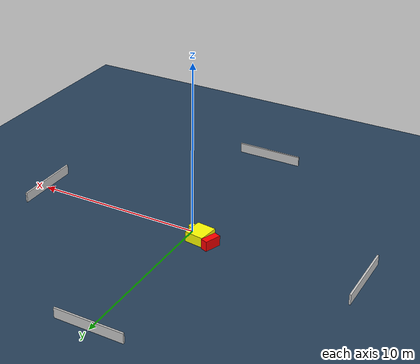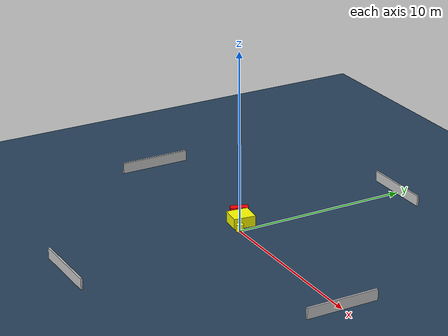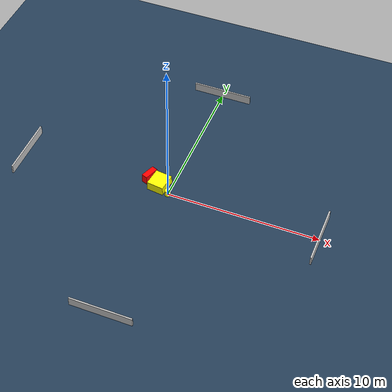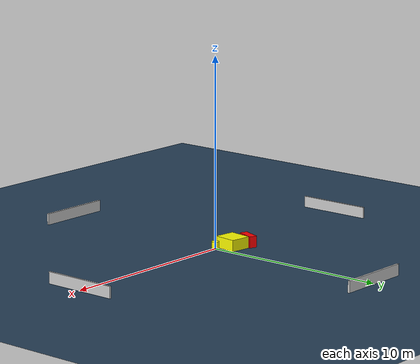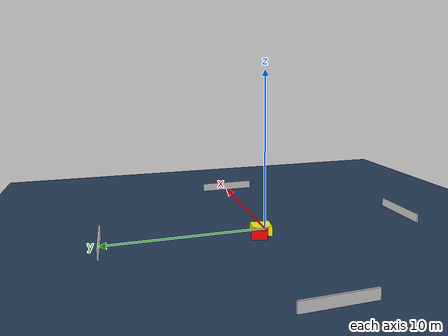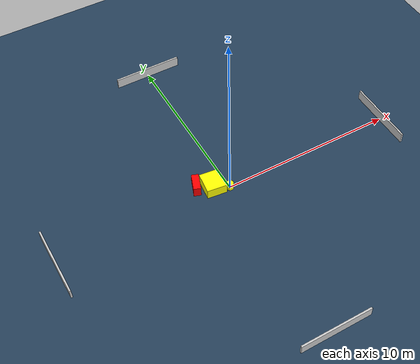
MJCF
<?xml version="1.0" ?>
<mujoco model="generated_environment">
  <option timestep="0.01" integrator="RK4" cone="elliptic"/>
  <default>
    <geom density="1"/>
  </default>
  <asset>
    <texture builtin="gradient" height="3072" name="skybox" rgb1="0.3 0.5 0.7" rgb2="0 0 0" type="skybox" width="512"/>
    <texture builtin="checker" height="300" name="groundplane" rgb1="0.2 0.3 0.4" rgb2="0.1 0.2 0.3" type="2d" width="300"/>
    <material name="groundplane" reflectance="0.2" texrepeat="5 5" texture="groundplane"/>
  </asset>
  <worldbody>
    <light dir="0 0 -1" directional="true" pos="0 0 1.5"/>
    <geom condim="3" friction="0.5 0.005 0.001" material="groundplane" name="floor" pos="0 0 0" size="0 0 0.05" type="plane"/>
    <body name="walls">
      <geom name="wall_1" condim="4" pos="-10.0 0.0 0.3" rgba="0.800000011920929 0.800000011920929 0.800000011920929 1.0" size="0.05 2.0 0.3" type="box"/>
      <geom name="wall_2" condim="4" pos="10.0 0.0 0.3" rgba="0.800000011920929 0.800000011920929 0.800000011920929 1.0" size="0.05 2.0 0.3" type="box"/>
      <geom name="wall_3" condim="4" pos="0.0 -10.0 0.3" rgba="0.800000011920929 0.800000011920929 0.800000011920929 1.0" size="2.0 0.05 0.3" type="box"/>
      <geom name="wall_4" condim="4" pos="0.0 10.0 0.3" rgba="0.800000011920929 0.800000011920929 0.800000011920929 1.0" size="2.0 0.05 0.3" type="box"/>
    </body>
    <body name="robot">
      <joint name="joint_x" type="slide" pos="0 0 0" axis="1 0 0"/>
      <joint name="joint_y" type="slide" pos="0 0 0" axis="0 1 0"/>
      <geom name="robot" type="cylinder" pos="0.0 0.0 0.2" size="0.2 0.2 0.0" mass="5.0" friction="1.0 0.005 0.0001" condim="4" rgba="1.0 1.0 0.0 1.0"/>
    </body>
    <body name="obstacle_1_movable">
      <geom name="obstacle_1_movable" condim="4" pos="-0.7699133448875224 0.5005803888920083 0.3" euler="0 0 352.9622324205037" friction="0.0 0.005 0.001" rgba="1.0 1.0 0.0 1.0" size="0.5605299547161395 0.6113357371124919 0.3" type="box" mass="0.1"/>
      <joint type="free"/>
    </body>
    <body name="obstacle_2_static">
      <geom name="obstacle_2_static" condim="4" pos="-1.6018947033290174 0.8564144598560993 0.3" euler="0 0 69.51060087720425" friction="0.0 0.005 0.001" rgba="1.0 0.0 0.0 1.0" size="0.49351151290385875 0.20463578973887322 0.3" type="box"/>
    </body>
  </worldbody>
  <actuator>
    <motor name="actuator_x" joint="joint_x" gear="1" ctrlrange="-1 1"/>
    <motor name="actuator_y" joint="joint_y" gear="1" ctrlrange="-1 1"/>
  </actuator>
</mujoco>
